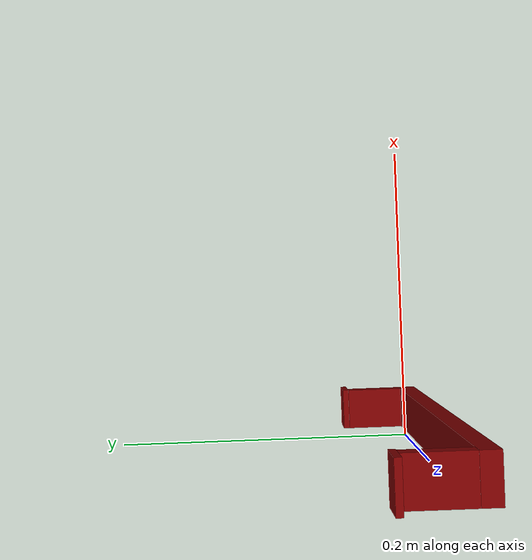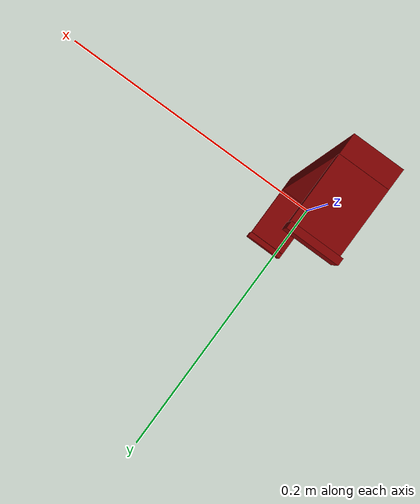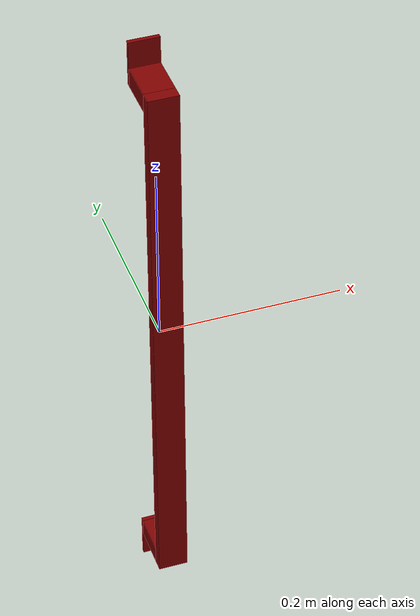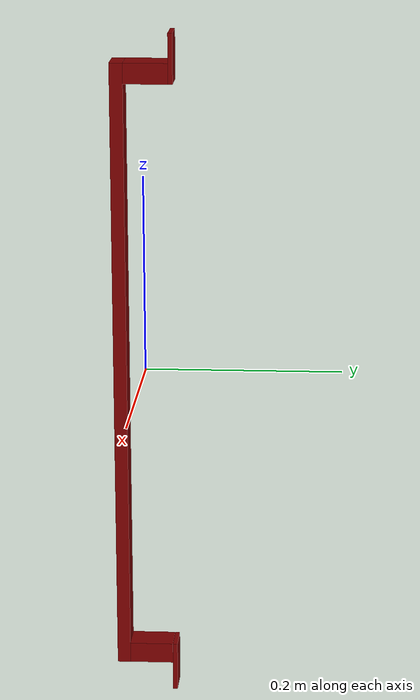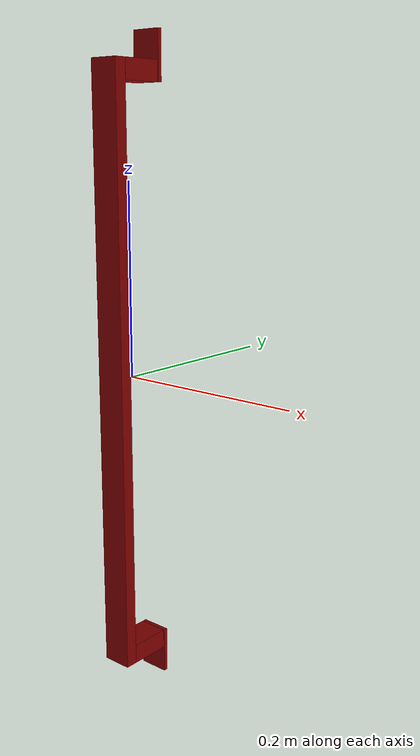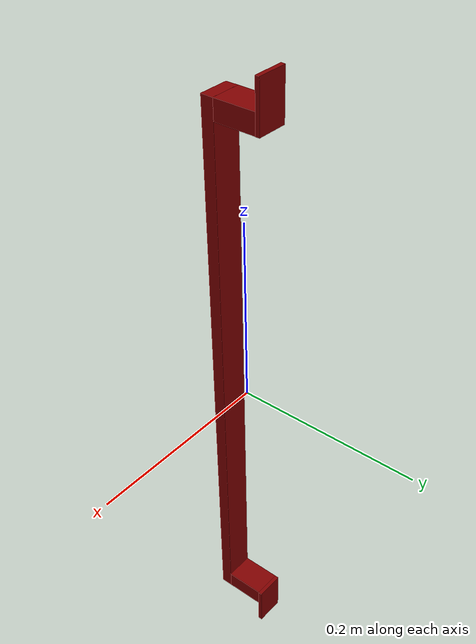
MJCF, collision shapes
<?xml version='1.0' encoding='UTF-8'?>
<mujoco model="model">
  <option timestep="0.002" gravity="0.0 0.0 -9.81"/>
  <compiler angle="radian"/>
  <asset>
    <mesh file="visuals/CabinetHandle050.obj" name="CabinetHandle050_vis"/>
    <texture file="visuals/T_BC001.png" name="tex" type="2d"/>
    <material name="mat" rgba="1 1 1 1.0" texture="tex" shininess="0.4472135901451111" specular="0.3103448502657381"/>
  </asset>
  <default>
    <default class="visual">
      <geom conaffinity="0" contype="0" group="1" type="mesh"/>
    </default>
    <default class="collision">
      <geom group="0" rgba="0.5 0 0 0.5" density="1.0" solref="0.004 1" solimp="0.998 0.998 0.001"/>
    </default>
    <default class="spawn">
      <geom group="0" rgba="1 1 1 0.5" contype="0" conaffinity="0"/>
      <site group="0" rgba="1 1 1 0.5"/>
    </default>
    <default class="region">
      <geom group="1" conaffinity="0" contype="0" rgba="0 1 0 0" mass="0"/>
    </default>
  </default>
  <worldbody>
    <body>
      <body name="object">
        <geom mesh="CabinetHandle050_vis" type="mesh" solimp="0.998 0.998 0.001" solref="0.001 1" friction="0.95 0.3 0.1" class="visual" material="mat"/>
        <geom type="box" pos="-0.00027094 -0.02473648 -0.00008977" size="0.016219280660152435 0.006619834806770086 0.31597331166267395" quat="1.0 0.0 0.0 0.0" class="collision"/>
        <geom type="box" pos="-0.00027094 0.00417963 0.30543968" size="0.016219280660152435 0.022256607189774513 0.010443865321576595" quat="1.0 0.0 0.0 0.0" class="collision"/>
        <geom type="box" pos="-0.00007741 0.02892171 0.32020086" size="0.016412807628512383 0.002276744693517685 0.02520504593849182" quat="1.0 0.0 0.0 0.0" class="collision"/>
        <geom type="box" pos="-0.00007741 0.02892171 -0.32024702" size="0.016412807628512383 0.002276744693517685 0.02520504593849182" quat="1.0 0.0 0.0 0.0" class="collision"/>
        <geom type="box" pos="-0.00027094 0.00417963 -0.30548584" size="0.016219280660152435 0.022256607189774513 0.010443865321576595" quat="1.0 0.0 0.0 0.0" class="collision"/>
        <geom class="region" name="reg_main" type="box" pos="0.0 1.0500000000024379e-07 0.0" size="0.01703947 0.031934475 0.34614886"/>
      </body>
    </body>
  </worldbody>
  <actuator/>
</mujoco>
